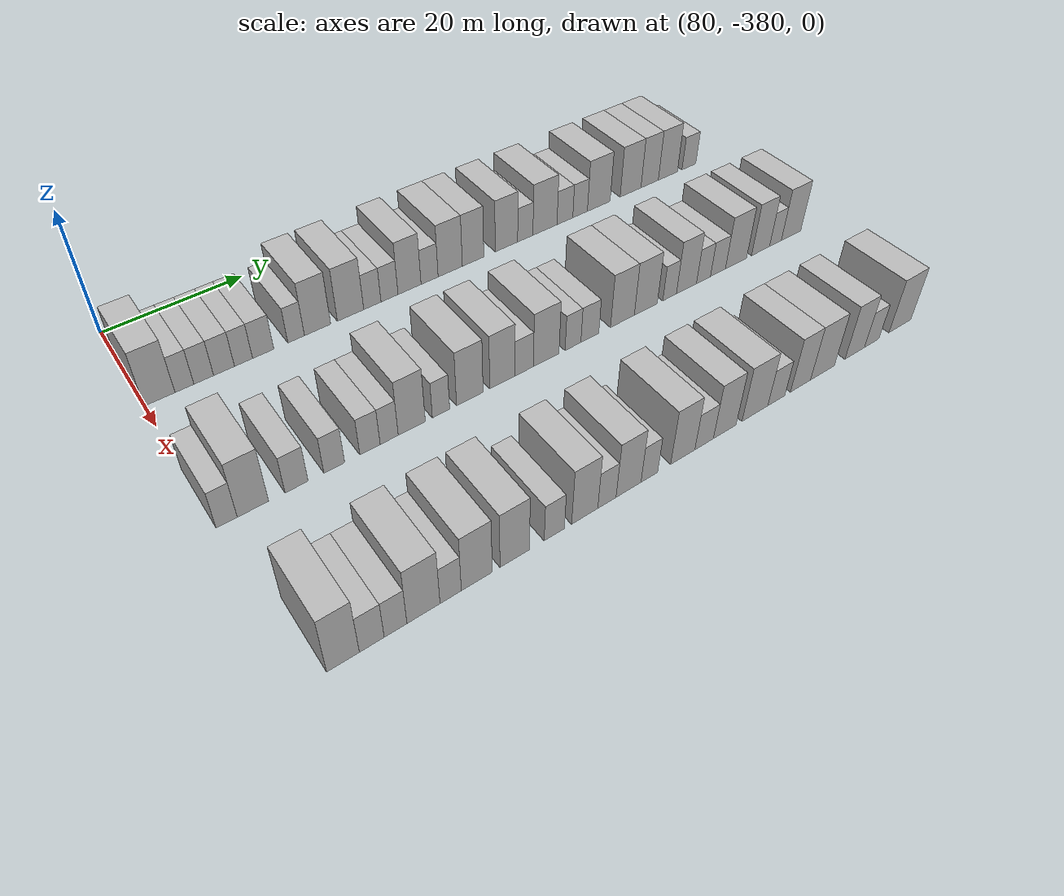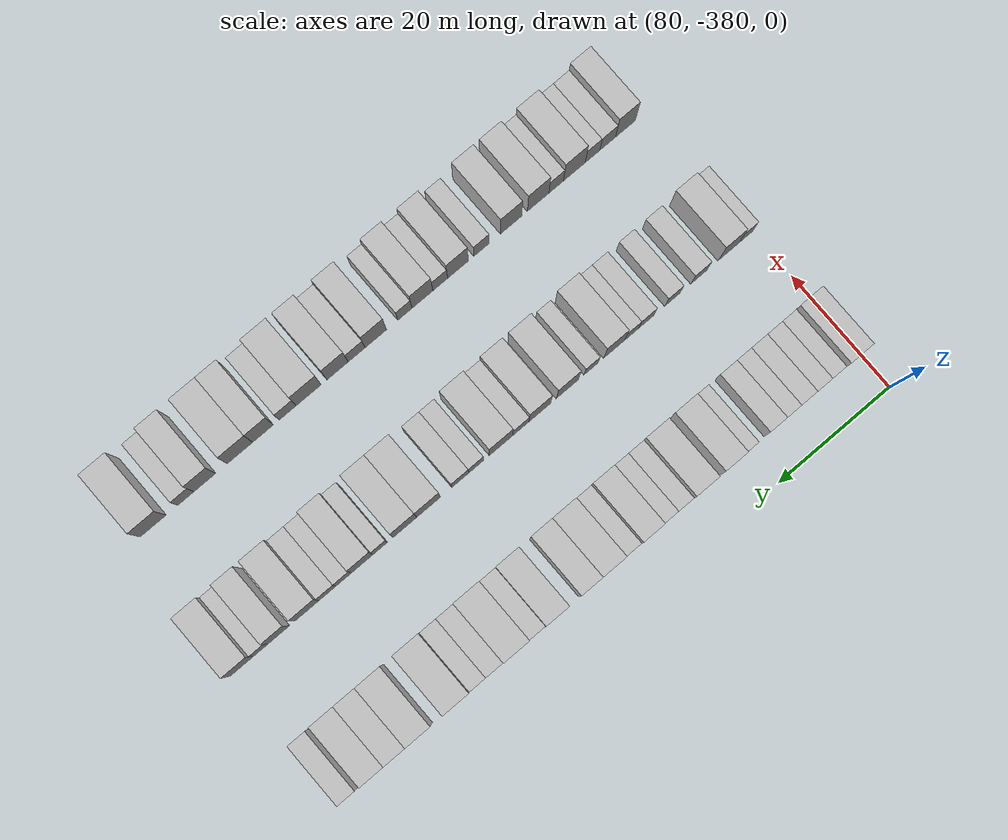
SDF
<sdf version="1.6">
 <world name="default">
  <model name="building_567">
   <static>1</static>
   <pose>91.0000 -378.0158 0 0.000000 0.000000 0.000000</pose>
   <link name="link">
    <pose>0 0 4.50 0 0 0</pose>
    <collision name="collision"><geometry><box><size>10.0000 3.9683 9.0000</size></box></geometry></collision>
    <visual name="visual">
     <cast_shadows>0</cast_shadows>
     <geometry><box><size>10.0000 3.9683 9.0000</size></box></geometry>
     <material>
      <script>
       <uri>model://HANNAS_wall/materials/scripts</uri>
       <uri>model://HANNAS_wall/materials/textures</uri>
       <name>vrc/HANNAS_wall</name>
      </script>
     </material>
    </visual>
   </link>
  </model>
  <model name="building_568">
   <static>1</static>
   <pose>91.0000 -374.8003 0 0.000000 0.000000 0.000000</pose>
   <link name="link">
    <pose>0 0 3.00 0 0 0</pose>
    <collision name="collision"><geometry><box><size>10.0000 2.4629 6.0000</size></box></geometry></collision>
    <visual name="visual">
     <cast_shadows>0</cast_shadows>
     <geometry><box><size>10.0000 2.4629 6.0000</size></box></geometry>
     <material>
      <script>
       <uri>model://HANNAS_wall/materials/scripts</uri>
       <uri>model://HANNAS_wall/materials/textures</uri>
       <name>vrc/HANNAS_wall</name>
      </script>
     </material>
    </visual>
   </link>
  </model>
  <model name="building_569">
   <static>1</static>
   <pose>91.0000 -372.2596 0 0.000000 0.000000 0.000000</pose>
   <link name="link">
    <pose>0 0 3.00 0 0 0</pose>
    <collision name="collision"><geometry><box><size>10.0000 2.6185 6.0000</size></box></geometry></collision>
    <visual name="visual">
     <cast_shadows>0</cast_shadows>
     <geometry><box><size>10.0000 2.6185 6.0000</size></box></geometry>
     <material>
      <script>
       <uri>model://HANNAS_wall/materials/scripts</uri>
       <uri>model://HANNAS_wall/materials/textures</uri>
       <name>vrc/HANNAS_wall</name>
      </script>
     </material>
    </visual>
   </link>
  </model>
  <model name="building_570">
   <static>1</static>
   <pose>91.0000 -369.5395 0 0.000000 0.000000 0.000000</pose>
   <link name="link">
    <pose>0 0 3.00 0 0 0</pose>
    <collision name="collision"><geometry><box><size>10.0000 2.8217 6.0000</size></box></geometry></collision>
    <visual name="visual">
     <cast_shadows>0</cast_shadows>
     <geometry><box><size>10.0000 2.8217 6.0000</size></box></geometry>
     <material>
      <script>
       <uri>model://HANNAS_wall/materials/scripts</uri>
       <uri>model://HANNAS_wall/materials/textures</uri>
       <name>vrc/HANNAS_wall</name>
      </script>
     </material>
    </visual>
   </link>
  </model>
  <model name="building_571">
   <static>1</static>
   <pose>91.0000 -366.8815 0 0.000000 0.000000 0.000000</pose>
   <link name="link">
    <pose>0 0 3.00 0 0 0</pose>
    <collision name="collision"><geometry><box><size>10.0000 2.4943 6.0000</size></box></geometry></collision>
    <visual name="visual">
     <cast_shadows>0</cast_shadows>
     <geometry><box><size>10.0000 2.4943 6.0000</size></box></geometry>
     <material>
      <script>
       <uri>model://HANNAS_wall/materials/scripts</uri>
       <uri>model://HANNAS_wall/materials/textures</uri>
       <name>vrc/HANNAS_wall</name>
      </script>
     </material>
    </visual>
   </link>
  </model>
  <model name="building_572">
   <static>1</static>
   <pose>91.0000 -364.1467 0 0.000000 0.000000 0.000000</pose>
   <link name="link">
    <pose>0 0 3.00 0 0 0</pose>
    <collision name="collision"><geometry><box><size>10.0000 2.9753 6.0000</size></box></geometry></collision>
    <visual name="visual">
     <cast_shadows>0</cast_shadows>
     <geometry><box><size>10.0000 2.9753 6.0000</size></box></geometry>
     <material>
      <script>
       <uri>model://HANNAS_wall/materials/scripts</uri>
       <uri>model://HANNAS_wall/materials/textures</uri>
       <name>vrc/HANNAS_wall</name>
      </script>
     </material>
    </visual>
   </link>
  </model>
  <model name="building_573">
   <static>1</static>
   <pose>91.0000 -359.4587 0 0.000000 0.000000 0.000000</pose>
   <link name="link">
    <pose>0 0 3.00 0 0 0</pose>
    <collision name="collision"><geometry><box><size>10.0000 2.4008 6.0000</size></box></geometry></collision>
    <visual name="visual">
     <cast_shadows>0</cast_shadows>
     <geometry><box><size>10.0000 2.4008 6.0000</size></box></geometry>
     <material>
      <script>
       <uri>model://HANNAS_wall/materials/scripts</uri>
       <uri>model://HANNAS_wall/materials/textures</uri>
       <name>vrc/HANNAS_wall</name>
      </script>
     </material>
    </visual>
   </link>
  </model>
  <model name="building_574">
   <static>1</static>
   <pose>91.0000 -356.3230 0 0.000000 0.000000 0.000000</pose>
   <link name="link">
    <pose>0 0 4.50 0 0 0</pose>
    <collision name="collision"><geometry><box><size>10.0000 3.8706 9.0000</size></box></geometry></collision>
    <visual name="visual">
     <cast_shadows>0</cast_shadows>
     <geometry><box><size>10.0000 3.8706 9.0000</size></box></geometry>
     <material>
      <script>
       <uri>model://HANNAS_wall/materials/scripts</uri>
       <uri>model://HANNAS_wall/materials/textures</uri>
       <name>vrc/HANNAS_wall</name>
      </script>
     </material>
    </visual>
   </link>
  </model>
  <model name="building_575">
   <static>1</static>
   <pose>91.0000 -351.3809 0 0.000000 0.000000 0.000000</pose>
   <link name="link">
    <pose>0 0 4.50 0 0 0</pose>
    <collision name="collision"><geometry><box><size>10.0000 4.0135 9.0000</size></box></geometry></collision>
    <visual name="visual">
     <cast_shadows>0</cast_shadows>
     <geometry><box><size>10.0000 4.0135 9.0000</size></box></geometry>
     <material>
      <script>
       <uri>model://HANNAS_wall/materials/scripts</uri>
       <uri>model://HANNAS_wall/materials/textures</uri>
       <name>vrc/HANNAS_wall</name>
      </script>
     </material>
    </visual>
   </link>
  </model>
  <model name="building_576">
   <static>1</static>
   <pose>91.0000 -348.0329 0 0.000000 0.000000 0.000000</pose>
   <link name="link">
    <pose>0 0 3.00 0 0 0</pose>
    <collision name="collision"><geometry><box><size>10.0000 2.6825 6.0000</size></box></geometry></collision>
    <visual name="visual">
     <cast_shadows>0</cast_shadows>
     <geometry><box><size>10.0000 2.6825 6.0000</size></box></geometry>
     <material>
      <script>
       <uri>model://HANNAS_wall/materials/scripts</uri>
       <uri>model://HANNAS_wall/materials/textures</uri>
       <name>vrc/HANNAS_wall</name>
      </script>
     </material>
    </visual>
   </link>
  </model>
  <model name="building_577">
   <static>1</static>
   <pose>91.0000 -345.3489 0 0.000000 0.000000 0.000000</pose>
   <link name="link">
    <pose>0 0 3.00 0 0 0</pose>
    <collision name="collision"><geometry><box><size>10.0000 2.6855 6.0000</size></box></geometry></collision>
    <visual name="visual">
     <cast_shadows>0</cast_shadows>
     <geometry><box><size>10.0000 2.6855 6.0000</size></box></geometry>
     <material>
      <script>
       <uri>model://HANNAS_wall/materials/scripts</uri>
       <uri>model://HANNAS_wall/materials/textures</uri>
       <name>vrc/HANNAS_wall</name>
      </script>
     </material>
    </visual>
   </link>
  </model>
  <model name="building_578">
   <static>1</static>
   <pose>91.0000 -342.1484 0 0.000000 0.000000 0.000000</pose>
   <link name="link">
    <pose>0 0 4.50 0 0 0</pose>
    <collision name="collision"><geometry><box><size>10.0000 3.7154 9.0000</size></box></geometry></collision>
    <visual name="visual">
     <cast_shadows>0</cast_shadows>
     <geometry><box><size>10.0000 3.7154 9.0000</size></box></geometry>
     <material>
      <script>
       <uri>model://HANNAS_wall/materials/scripts</uri>
       <uri>model://HANNAS_wall/materials/textures</uri>
       <name>vrc/HANNAS_wall</name>
      </script>
     </material>
    </visual>
   </link>
  </model>
  <model name="building_579">
   <static>1</static>
   <pose>91.0000 -338.8893 0 0.000000 0.000000 0.000000</pose>
   <link name="link">
    <pose>0 0 3.00 0 0 0</pose>
    <collision name="collision"><geometry><box><size>10.0000 2.8028 6.0000</size></box></geometry></collision>
    <visual name="visual">
     <cast_shadows>0</cast_shadows>
     <geometry><box><size>10.0000 2.8028 6.0000</size></box></geometry>
     <material>
      <script>
       <uri>model://HANNAS_wall/materials/scripts</uri>
       <uri>model://HANNAS_wall/materials/textures</uri>
       <name>vrc/HANNAS_wall</name>
      </script>
     </material>
    </visual>
   </link>
  </model>
  <model name="building_580">
   <static>1</static>
   <pose>91.0000 -335.4547 0 0.000000 0.000000 0.000000</pose>
   <link name="link">
    <pose>0 0 4.50 0 0 0</pose>
    <collision name="collision"><geometry><box><size>10.0000 4.0664 9.0000</size></box></geometry></collision>
    <visual name="visual">
     <cast_shadows>0</cast_shadows>
     <geometry><box><size>10.0000 4.0664 9.0000</size></box></geometry>
     <material>
      <script>
       <uri>model://HANNAS_wall/materials/scripts</uri>
       <uri>model://HANNAS_wall/materials/textures</uri>
       <name>vrc/HANNAS_wall</name>
      </script>
     </material>
    </visual>
   </link>
  </model>
  <model name="building_581">
   <static>1</static>
   <pose>91.0000 -331.5800 0 0.000000 0.000000 0.000000</pose>
   <link name="link">
    <pose>0 0 4.50 0 0 0</pose>
    <collision name="collision"><geometry><box><size>10.0000 3.6829 9.0000</size></box></geometry></collision>
    <visual name="visual">
     <cast_shadows>0</cast_shadows>
     <geometry><box><size>10.0000 3.6829 9.0000</size></box></geometry>
     <material>
      <script>
       <uri>model://HANNAS_wall/materials/scripts</uri>
       <uri>model://HANNAS_wall/materials/textures</uri>
       <name>vrc/HANNAS_wall</name>
      </script>
     </material>
    </visual>
   </link>
  </model>
  <model name="building_582">
   <static>1</static>
   <pose>91.0000 -325.7491 0 0.000000 0.000000 0.000000</pose>
   <link name="link">
    <pose>0 0 4.50 0 0 0</pose>
    <collision name="collision"><geometry><box><size>10.0000 3.9789 9.0000</size></box></geometry></collision>
    <visual name="visual">
     <cast_shadows>0</cast_shadows>
     <geometry><box><size>10.0000 3.9789 9.0000</size></box></geometry>
     <material>
      <script>
       <uri>model://HANNAS_wall/materials/scripts</uri>
       <uri>model://HANNAS_wall/materials/textures</uri>
       <name>vrc/HANNAS_wall</name>
      </script>
     </material>
    </visual>
   </link>
  </model>
  <model name="building_583">
   <static>1</static>
   <pose>91.0000 -322.3798 0 0.000000 0.000000 0.000000</pose>
   <link name="link">
    <pose>0 0 3.00 0 0 0</pose>
    <collision name="collision"><geometry><box><size>10.0000 2.7599 6.0000</size></box></geometry></collision>
    <visual name="visual">
     <cast_shadows>0</cast_shadows>
     <geometry><box><size>10.0000 2.7599 6.0000</size></box></geometry>
     <material>
      <script>
       <uri>model://HANNAS_wall/materials/scripts</uri>
       <uri>model://HANNAS_wall/materials/textures</uri>
       <name>vrc/HANNAS_wall</name>
      </script>
     </material>
    </visual>
   </link>
  </model>
  <model name="building_584">
   <static>1</static>
   <pose>91.0000 -318.7739 0 0.000000 0.000000 0.000000</pose>
   <link name="link">
    <pose>0 0 4.50 0 0 0</pose>
    <collision name="collision"><geometry><box><size>10.0000 4.4519 9.0000</size></box></geometry></collision>
    <visual name="visual">
     <cast_shadows>0</cast_shadows>
     <geometry><box><size>10.0000 4.4519 9.0000</size></box></geometry>
     <material>
      <script>
       <uri>model://HANNAS_wall/materials/scripts</uri>
       <uri>model://HANNAS_wall/materials/textures</uri>
       <name>vrc/HANNAS_wall</name>
      </script>
     </material>
    </visual>
   </link>
  </model>
  <model name="building_585">
   <static>1</static>
   <pose>91.0000 -315.0492 0 0.000000 0.000000 0.000000</pose>
   <link name="link">
    <pose>0 0 3.00 0 0 0</pose>
    <collision name="collision"><geometry><box><size>10.0000 2.9974 6.0000</size></box></geometry></collision>
    <visual name="visual">
     <cast_shadows>0</cast_shadows>
     <geometry><box><size>10.0000 2.9974 6.0000</size></box></geometry>
     <material>
      <script>
       <uri>model://HANNAS_wall/materials/scripts</uri>
       <uri>model://HANNAS_wall/materials/textures</uri>
       <name>vrc/HANNAS_wall</name>
      </script>
     </material>
    </visual>
   </link>
  </model>
  <model name="building_586">
   <static>1</static>
   <pose>91.0000 -312.1486 0 0.000000 0.000000 0.000000</pose>
   <link name="link">
    <pose>0 0 3.00 0 0 0</pose>
    <collision name="collision"><geometry><box><size>10.0000 2.8039 6.0000</size></box></geometry></collision>
    <visual name="visual">
     <cast_shadows>0</cast_shadows>
     <geometry><box><size>10.0000 2.8039 6.0000</size></box></geometry>
     <material>
      <script>
       <uri>model://HANNAS_wall/materials/scripts</uri>
       <uri>model://HANNAS_wall/materials/textures</uri>
       <name>vrc/HANNAS_wall</name>
      </script>
     </material>
    </visual>
   </link>
  </model>
  <model name="building_587">
   <static>1</static>
   <pose>91.0000 -308.5208 0 0.000000 0.000000 0.000000</pose>
   <link name="link">
    <pose>0 0 4.50 0 0 0</pose>
    <collision name="collision"><geometry><box><size>10.0000 4.4518 9.0000</size></box></geometry></collision>
    <visual name="visual">
     <cast_shadows>0</cast_shadows>
     <geometry><box><size>10.0000 4.4518 9.0000</size></box></geometry>
     <material>
      <script>
       <uri>model://HANNAS_wall/materials/scripts</uri>
       <uri>model://HANNAS_wall/materials/textures</uri>
       <name>vrc/HANNAS_wall</name>
      </script>
     </material>
    </visual>
   </link>
  </model>
  <model name="building_588">
   <static>1</static>
   <pose>91.0000 -302.1798 0 0.000000 0.000000 0.000000</pose>
   <link name="link">
    <pose>0 0 4.50 0 0 0</pose>
    <collision name="collision"><geometry><box><size>10.0000 4.2302 9.0000</size></box></geometry></collision>
    <visual name="visual">
     <cast_shadows>0</cast_shadows>
     <geometry><box><size>10.0000 4.2302 9.0000</size></box></geometry>
     <material>
      <script>
       <uri>model://HANNAS_wall/materials/scripts</uri>
       <uri>model://HANNAS_wall/materials/textures</uri>
       <name>vrc/HANNAS_wall</name>
      </script>
     </material>
    </visual>
   </link>
  </model>
  <model name="building_589">
   <static>1</static>
   <pose>91.0000 -298.2613 0 0.000000 0.000000 0.000000</pose>
   <link name="link">
    <pose>0 0 4.50 0 0 0</pose>
    <collision name="collision"><geometry><box><size>10.0000 3.6068 9.0000</size></box></geometry></collision>
    <visual name="visual">
     <cast_shadows>0</cast_shadows>
     <geometry><box><size>10.0000 3.6068 9.0000</size></box></geometry>
     <material>
      <script>
       <uri>model://HANNAS_wall/materials/scripts</uri>
       <uri>model://HANNAS_wall/materials/textures</uri>
       <name>vrc/HANNAS_wall</name>
      </script>
     </material>
    </visual>
   </link>
  </model>
  <model name="building_590">
   <static>1</static>
   <pose>91.0000 -294.4457 0 0.000000 0.000000 0.000000</pose>
   <link name="link">
    <pose>0 0 4.50 0 0 0</pose>
    <collision name="collision"><geometry><box><size>10.0000 4.0244 9.0000</size></box></geometry></collision>
    <visual name="visual">
     <cast_shadows>0</cast_shadows>
     <geometry><box><size>10.0000 4.0244 9.0000</size></box></geometry>
     <material>
      <script>
       <uri>model://HANNAS_wall/materials/scripts</uri>
       <uri>model://HANNAS_wall/materials/textures</uri>
       <name>vrc/HANNAS_wall</name>
      </script>
     </material>
    </visual>
   </link>
  </model>
  <model name="building_591">
   <static>1</static>
   <pose>91.0000 -289.9420 0 0.000000 0.000000 0.000000</pose>
   <link name="link">
    <pose>0 0 3.00 0 0 0</pose>
    <collision name="collision"><geometry><box><size>10.0000 2.9829 6.0000</size></box></geometry></collision>
    <visual name="visual">
     <cast_shadows>0</cast_shadows>
     <geometry><box><size>10.0000 2.9829 6.0000</size></box></geometry>
     <material>
      <script>
       <uri>model://HANNAS_wall/materials/scripts</uri>
       <uri>model://HANNAS_wall/materials/textures</uri>
       <name>vrc/HANNAS_wall</name>
      </script>
     </material>
    </visual>
   </link>
  </model>
  <model name="building_757">
   <static>1</static>
   <pose>113.0000 -378.7562 0 0.000000 0.000000 0.000000</pose>
   <link name="link">
    <pose>0 0 3.00 0 0 0</pose>
    <collision name="collision"><geometry><box><size>10.0000 2.4876 6.0000</size></box></geometry></collision>
    <visual name="visual">
     <cast_shadows>0</cast_shadows>
     <geometry><box><size>10.0000 2.4876 6.0000</size></box></geometry>
     <material>
      <script>
       <uri>model://HANNAS_wall/materials/scripts</uri>
       <uri>model://HANNAS_wall/materials/textures</uri>
       <name>vrc/HANNAS_wall</name>
      </script>
     </material>
    </visual>
   </link>
  </model>
  <model name="building_758">
   <static>1</static>
   <pose>113.0000 -375.6260 0 0.000000 0.000000 0.000000</pose>
   <link name="link">
    <pose>0 0 4.50 0 0 0</pose>
    <collision name="collision"><geometry><box><size>10.0000 3.7728 9.0000</size></box></geometry></collision>
    <visual name="visual">
     <cast_shadows>0</cast_shadows>
     <geometry><box><size>10.0000 3.7728 9.0000</size></box></geometry>
     <material>
      <script>
       <uri>model://HANNAS_wall/materials/scripts</uri>
       <uri>model://HANNAS_wall/materials/textures</uri>
       <name>vrc/HANNAS_wall</name>
      </script>
     </material>
    </visual>
   </link>
  </model>
  <model name="building_759">
   <static>1</static>
   <pose>113.0000 -370.2925 0 0.000000 0.000000 0.000000</pose>
   <link name="link">
    <pose>0 0 3.00 0 0 0</pose>
    <collision name="collision"><geometry><box><size>10.0000 2.8942 6.0000</size></box></geometry></collision>
    <visual name="visual">
     <cast_shadows>0</cast_shadows>
     <geometry><box><size>10.0000 2.8942 6.0000</size></box></geometry>
     <material>
      <script>
       <uri>model://HANNAS_wall/materials/scripts</uri>
       <uri>model://HANNAS_wall/materials/textures</uri>
       <name>vrc/HANNAS_wall</name>
      </script>
     </material>
    </visual>
   </link>
  </model>
  <model name="building_760">
   <static>1</static>
   <pose>113.0000 -365.4995 0 0.000000 0.000000 0.000000</pose>
   <link name="link">
    <pose>0 0 3.00 0 0 0</pose>
    <collision name="collision"><geometry><box><size>10.0000 2.6917 6.0000</size></box></geometry></collision>
    <visual name="visual">
     <cast_shadows>0</cast_shadows>
     <geometry><box><size>10.0000 2.6917 6.0000</size></box></geometry>
     <material>
      <script>
       <uri>model://HANNAS_wall/materials/scripts</uri>
       <uri>model://HANNAS_wall/materials/textures</uri>
       <name>vrc/HANNAS_wall</name>
      </script>
     </material>
    </visual>
   </link>
  </model>
  <model name="building_761">
   <static>1</static>
   <pose>113.0000 -360.7933 0 0.000000 0.000000 0.000000</pose>
   <link name="link">
    <pose>0 0 3.00 0 0 0</pose>
    <collision name="collision"><geometry><box><size>10.0000 2.7208 6.0000</size></box></geometry></collision>
    <visual name="visual">
     <cast_shadows>0</cast_shadows>
     <geometry><box><size>10.0000 2.7208 6.0000</size></box></geometry>
     <material>
      <script>
       <uri>model://HANNAS_wall/materials/scripts</uri>
       <uri>model://HANNAS_wall/materials/textures</uri>
       <name>vrc/HANNAS_wall</name>
      </script>
     </material>
    </visual>
   </link>
  </model>
  <model name="building_762">
   <static>1</static>
   <pose>113.0000 -358.1985 0 0.000000 0.000000 0.000000</pose>
   <link name="link">
    <pose>0 0 3.00 0 0 0</pose>
    <collision name="collision"><geometry><box><size>10.0000 2.4688 6.0000</size></box></geometry></collision>
    <visual name="visual">
     <cast_shadows>0</cast_shadows>
     <geometry><box><size>10.0000 2.4688 6.0000</size></box></geometry>
     <material>
      <script>
       <uri>model://HANNAS_wall/materials/scripts</uri>
       <uri>model://HANNAS_wall/materials/textures</uri>
       <name>vrc/HANNAS_wall</name>
      </script>
     </material>
    </visual>
   </link>
  </model>
  <model name="building_763">
   <static>1</static>
   <pose>113.0000 -355.0767 0 0.000000 0.000000 0.000000</pose>
   <link name="link">
    <pose>0 0 4.50 0 0 0</pose>
    <collision name="collision"><geometry><box><size>10.0000 3.7748 9.0000</size></box></geometry></collision>
    <visual name="visual">
     <cast_shadows>0</cast_shadows>
     <geometry><box><size>10.0000 3.7748 9.0000</size></box></geometry>
     <material>
      <script>
       <uri>model://HANNAS_wall/materials/scripts</uri>
       <uri>model://HANNAS_wall/materials/textures</uri>
       <name>vrc/HANNAS_wall</name>
      </script>
     </material>
    </visual>
   </link>
  </model>
  <model name="building_764">
   <static>1</static>
   <pose>113.0000 -350.9480 0 0.000000 0.000000 0.000000</pose>
   <link name="link">
    <pose>0 0 3.00 0 0 0</pose>
    <collision name="collision"><geometry><box><size>10.0000 2.4826 6.0000</size></box></geometry></collision>
    <visual name="visual">
     <cast_shadows>0</cast_shadows>
     <geometry><box><size>10.0000 2.4826 6.0000</size></box></geometry>
     <material>
      <script>
       <uri>model://HANNAS_wall/materials/scripts</uri>
       <uri>model://HANNAS_wall/materials/textures</uri>
       <name>vrc/HANNAS_wall</name>
      </script>
     </material>
    </visual>
   </link>
  </model>
  <model name="building_765">
   <static>1</static>
   <pose>113.0000 -346.7417 0 0.000000 0.000000 0.000000</pose>
   <link name="link">
    <pose>0 0 4.50 0 0 0</pose>
    <collision name="collision"><geometry><box><size>10.0000 3.9300 9.0000</size></box></geometry></collision>
    <visual name="visual">
     <cast_shadows>0</cast_shadows>
     <geometry><box><size>10.0000 3.9300 9.0000</size></box></geometry>
     <material>
      <script>
       <uri>model://HANNAS_wall/materials/scripts</uri>
       <uri>model://HANNAS_wall/materials/textures</uri>
       <name>vrc/HANNAS_wall</name>
      </script>
     </material>
    </visual>
   </link>
  </model>
  <model name="building_766">
   <static>1</static>
   <pose>113.0000 -341.8485 0 0.000000 0.000000 0.000000</pose>
   <link name="link">
    <pose>0 0 4.50 0 0 0</pose>
    <collision name="collision"><geometry><box><size>10.0000 3.8563 9.0000</size></box></geometry></collision>
    <visual name="visual">
     <cast_shadows>0</cast_shadows>
     <geometry><box><size>10.0000 3.8563 9.0000</size></box></geometry>
     <material>
      <script>
       <uri>model://HANNAS_wall/materials/scripts</uri>
       <uri>model://HANNAS_wall/materials/textures</uri>
       <name>vrc/HANNAS_wall</name>
      </script>
     </material>
    </visual>
   </link>
  </model>
  <model name="building_767">
   <static>1</static>
   <pose>113.0000 -338.4927 0 0.000000 0.000000 0.000000</pose>
   <link name="link">
    <pose>0 0 3.00 0 0 0</pose>
    <collision name="collision"><geometry><box><size>10.0000 2.8553 6.0000</size></box></geometry></collision>
    <visual name="visual">
     <cast_shadows>0</cast_shadows>
     <geometry><box><size>10.0000 2.8553 6.0000</size></box></geometry>
     <material>
      <script>
       <uri>model://HANNAS_wall/materials/scripts</uri>
       <uri>model://HANNAS_wall/materials/textures</uri>
       <name>vrc/HANNAS_wall</name>
      </script>
     </material>
    </visual>
   </link>
  </model>
  <model name="building_768">
   <static>1</static>
   <pose>113.0000 -335.0093 0 0.000000 0.000000 0.000000</pose>
   <link name="link">
    <pose>0 0 4.50 0 0 0</pose>
    <collision name="collision"><geometry><box><size>10.0000 4.1115 9.0000</size></box></geometry></collision>
    <visual name="visual">
     <cast_shadows>0</cast_shadows>
     <geometry><box><size>10.0000 4.1115 9.0000</size></box></geometry>
     <material>
      <script>
       <uri>model://HANNAS_wall/materials/scripts</uri>
       <uri>model://HANNAS_wall/materials/textures</uri>
       <name>vrc/HANNAS_wall</name>
      </script>
     </material>
    </visual>
   </link>
  </model>
  <model name="building_769">
   <static>1</static>
   <pose>113.0000 -330.6528 0 0.000000 0.000000 0.000000</pose>
   <link name="link">
    <pose>0 0 3.00 0 0 0</pose>
    <collision name="collision"><geometry><box><size>10.0000 2.6013 6.0000</size></box></geometry></collision>
    <visual name="visual">
     <cast_shadows>0</cast_shadows>
     <geometry><box><size>10.0000 2.6013 6.0000</size></box></geometry>
     <material>
      <script>
       <uri>model://HANNAS_wall/materials/scripts</uri>
       <uri>model://HANNAS_wall/materials/textures</uri>
       <name>vrc/HANNAS_wall</name>
      </script>
     </material>
    </visual>
   </link>
  </model>
  <model name="building_770">
   <static>1</static>
   <pose>113.0000 -327.8547 0 0.000000 0.000000 0.000000</pose>
   <link name="link">
    <pose>0 0 3.00 0 0 0</pose>
    <collision name="collision"><geometry><box><size>10.0000 2.9950 6.0000</size></box></geometry></collision>
    <visual name="visual">
     <cast_shadows>0</cast_shadows>
     <geometry><box><size>10.0000 2.9950 6.0000</size></box></geometry>
     <material>
      <script>
       <uri>model://HANNAS_wall/materials/scripts</uri>
       <uri>model://HANNAS_wall/materials/textures</uri>
       <name>vrc/HANNAS_wall</name>
      </script>
     </material>
    </visual>
   </link>
  </model>
  <model name="building_771">
   <static>1</static>
   <pose>113.0000 -322.2824 0 0.000000 0.000000 0.000000</pose>
   <link name="link">
    <pose>0 0 4.50 0 0 0</pose>
    <collision name="collision"><geometry><box><size>10.0000 4.1495 9.0000</size></box></geometry></collision>
    <visual name="visual">
     <cast_shadows>0</cast_shadows>
     <geometry><box><size>10.0000 4.1495 9.0000</size></box></geometry>
     <material>
      <script>
       <uri>model://HANNAS_wall/materials/scripts</uri>
       <uri>model://HANNAS_wall/materials/textures</uri>
       <name>vrc/HANNAS_wall</name>
      </script>
     </material>
    </visual>
   </link>
  </model>
  <model name="building_772">
   <static>1</static>
   <pose>113.0000 -318.1601 0 0.000000 0.000000 0.000000</pose>
   <link name="link">
    <pose>0 0 4.50 0 0 0</pose>
    <collision name="collision"><geometry><box><size>10.0000 4.0951 9.0000</size></box></geometry></collision>
    <visual name="visual">
     <cast_shadows>0</cast_shadows>
     <geometry><box><size>10.0000 4.0951 9.0000</size></box></geometry>
     <material>
      <script>
       <uri>model://HANNAS_wall/materials/scripts</uri>
       <uri>model://HANNAS_wall/materials/textures</uri>
       <name>vrc/HANNAS_wall</name>
      </script>
     </material>
    </visual>
   </link>
  </model>
  <model name="building_773">
   <static>1</static>
   <pose>113.0000 -313.8678 0 0.000000 0.000000 0.000000</pose>
   <link name="link">
    <pose>0 0 3.00 0 0 0</pose>
    <collision name="collision"><geometry><box><size>10.0000 2.4894 6.0000</size></box></geometry></collision>
    <visual name="visual">
     <cast_shadows>0</cast_shadows>
     <geometry><box><size>10.0000 2.4894 6.0000</size></box></geometry>
     <material>
      <script>
       <uri>model://HANNAS_wall/materials/scripts</uri>
       <uri>model://HANNAS_wall/materials/textures</uri>
       <name>vrc/HANNAS_wall</name>
      </script>
     </material>
    </visual>
   </link>
  </model>
  <model name="building_774">
   <static>1</static>
   <pose>113.0000 -310.7452 0 0.000000 0.000000 0.000000</pose>
   <link name="link">
    <pose>0 0 4.50 0 0 0</pose>
    <collision name="collision"><geometry><box><size>10.0000 3.7559 9.0000</size></box></geometry></collision>
    <visual name="visual">
     <cast_shadows>0</cast_shadows>
     <geometry><box><size>10.0000 3.7559 9.0000</size></box></geometry>
     <material>
      <script>
       <uri>model://HANNAS_wall/materials/scripts</uri>
       <uri>model://HANNAS_wall/materials/textures</uri>
       <name>vrc/HANNAS_wall</name>
      </script>
     </material>
    </visual>
   </link>
  </model>
  <model name="building_775">
   <static>1</static>
   <pose>113.0000 -307.5358 0 0.000000 0.000000 0.000000</pose>
   <link name="link">
    <pose>0 0 3.00 0 0 0</pose>
    <collision name="collision"><geometry><box><size>10.0000 2.6630 6.0000</size></box></geometry></collision>
    <visual name="visual">
     <cast_shadows>0</cast_shadows>
     <geometry><box><size>10.0000 2.6630 6.0000</size></box></geometry>
     <material>
      <script>
       <uri>model://HANNAS_wall/materials/scripts</uri>
       <uri>model://HANNAS_wall/materials/textures</uri>
       <name>vrc/HANNAS_wall</name>
      </script>
     </material>
    </visual>
   </link>
  </model>
  <model name="building_776">
   <static>1</static>
   <pose>113.0000 -304.7597 0 0.000000 0.000000 0.000000</pose>
   <link name="link">
    <pose>0 0 3.00 0 0 0</pose>
    <collision name="collision"><geometry><box><size>10.0000 2.8892 6.0000</size></box></geometry></collision>
    <visual name="visual">
     <cast_shadows>0</cast_shadows>
     <geometry><box><size>10.0000 2.8892 6.0000</size></box></geometry>
     <material>
      <script>
       <uri>model://HANNAS_wall/materials/scripts</uri>
       <uri>model://HANNAS_wall/materials/textures</uri>
       <name>vrc/HANNAS_wall</name>
      </script>
     </material>
    </visual>
   </link>
  </model>
  <model name="building_777">
   <static>1</static>
   <pose>113.0000 -301.2146 0 0.000000 0.000000 0.000000</pose>
   <link name="link">
    <pose>0 0 4.50 0 0 0</pose>
    <collision name="collision"><geometry><box><size>10.0000 4.2011 9.0000</size></box></geometry></collision>
    <visual name="visual">
     <cast_shadows>0</cast_shadows>
     <geometry><box><size>10.0000 4.2011 9.0000</size></box></geometry>
     <material>
      <script>
       <uri>model://HANNAS_wall/materials/scripts</uri>
       <uri>model://HANNAS_wall/materials/textures</uri>
       <name>vrc/HANNAS_wall</name>
      </script>
     </material>
    </visual>
   </link>
  </model>
  <model name="building_778">
   <static>1</static>
   <pose>113.0000 -296.2862 0 0.000000 0.000000 0.000000</pose>
   <link name="link">
    <pose>0 0 4.50 0 0 0</pose>
    <collision name="collision"><geometry><box><size>10.0000 3.6557 9.0000</size></box></geometry></collision>
    <visual name="visual">
     <cast_shadows>0</cast_shadows>
     <geometry><box><size>10.0000 3.6557 9.0000</size></box></geometry>
     <material>
      <script>
       <uri>model://HANNAS_wall/materials/scripts</uri>
       <uri>model://HANNAS_wall/materials/textures</uri>
       <name>vrc/HANNAS_wall</name>
      </script>
     </material>
    </visual>
   </link>
  </model>
  <model name="building_779">
   <static>1</static>
   <pose>113.0000 -293.2380 0 0.000000 0.000000 0.000000</pose>
   <link name="link">
    <pose>0 0 3.00 0 0 0</pose>
    <collision name="collision"><geometry><box><size>10.0000 2.4408 6.0000</size></box></geometry></collision>
    <visual name="visual">
     <cast_shadows>0</cast_shadows>
     <geometry><box><size>10.0000 2.4408 6.0000</size></box></geometry>
     <material>
      <script>
       <uri>model://HANNAS_wall/materials/scripts</uri>
       <uri>model://HANNAS_wall/materials/textures</uri>
       <name>vrc/HANNAS_wall</name>
      </script>
     </material>
    </visual>
   </link>
  </model>
  <model name="building_780">
   <static>1</static>
   <pose>113.0000 -289.9582 0 0.000000 0.000000 0.000000</pose>
   <link name="link">
    <pose>0 0 4.50 0 0 0</pose>
    <collision name="collision"><geometry><box><size>10.0000 4.1188 9.0000</size></box></geometry></collision>
    <visual name="visual">
     <cast_shadows>0</cast_shadows>
     <geometry><box><size>10.0000 4.1188 9.0000</size></box></geometry>
     <material>
      <script>
       <uri>model://HANNAS_wall/materials/scripts</uri>
       <uri>model://HANNAS_wall/materials/textures</uri>
       <name>vrc/HANNAS_wall</name>
      </script>
     </material>
    </visual>
   </link>
  </model>
  <model name="building_945">
   <static>1</static>
   <pose>135.0000 -376.1919 0 0.000000 0.000000 0.000000</pose>
   <link name="link">
    <pose>0 0 4.50 0 0 0</pose>
    <collision name="collision"><geometry><box><size>10.0000 3.6162 9.0000</size></box></geometry></collision>
    <visual name="visual">
     <cast_shadows>0</cast_shadows>
     <geometry><box><size>10.0000 3.6162 9.0000</size></box></geometry>
     <material>
      <script>
       <uri>model://HANNAS_wall/materials/scripts</uri>
       <uri>model://HANNAS_wall/materials/textures</uri>
       <name>vrc/HANNAS_wall</name>
      </script>
     </material>
    </visual>
   </link>
  </model>
  <model name="building_946">
   <static>1</static>
   <pose>135.0000 -372.9798 0 0.000000 0.000000 0.000000</pose>
   <link name="link">
    <pose>0 0 3.00 0 0 0</pose>
    <collision name="collision"><geometry><box><size>10.0000 2.8080 6.0000</size></box></geometry></collision>
    <visual name="visual">
     <cast_shadows>0</cast_shadows>
     <geometry><box><size>10.0000 2.8080 6.0000</size></box></geometry>
     <material>
      <script>
       <uri>model://HANNAS_wall/materials/scripts</uri>
       <uri>model://HANNAS_wall/materials/textures</uri>
       <name>vrc/HANNAS_wall</name>
      </script>
     </material>
    </visual>
   </link>
  </model>
  <model name="building_947">
   <static>1</static>
   <pose>135.0000 -370.2600 0 0.000000 0.000000 0.000000</pose>
   <link name="link">
    <pose>0 0 3.00 0 0 0</pose>
    <collision name="collision"><geometry><box><size>10.0000 2.6317 6.0000</size></box></geometry></collision>
    <visual name="visual">
     <cast_shadows>0</cast_shadows>
     <geometry><box><size>10.0000 2.6317 6.0000</size></box></geometry>
     <material>
      <script>
       <uri>model://HANNAS_wall/materials/scripts</uri>
       <uri>model://HANNAS_wall/materials/textures</uri>
       <name>vrc/HANNAS_wall</name>
      </script>
     </material>
    </visual>
   </link>
  </model>
  <model name="building_948">
   <static>1</static>
   <pose>135.0000 -366.9786 0 0.000000 0.000000 0.000000</pose>
   <link name="link">
    <pose>0 0 4.50 0 0 0</pose>
    <collision name="collision"><geometry><box><size>10.0000 3.9310 9.0000</size></box></geometry></collision>
    <visual name="visual">
     <cast_shadows>0</cast_shadows>
     <geometry><box><size>10.0000 3.9310 9.0000</size></box></geometry>
     <material>
      <script>
       <uri>model://HANNAS_wall/materials/scripts</uri>
       <uri>model://HANNAS_wall/materials/textures</uri>
       <name>vrc/HANNAS_wall</name>
      </script>
     </material>
    </visual>
   </link>
  </model>
  <model name="building_949">
   <static>1</static>
   <pose>135.0000 -363.7133 0 0.000000 0.000000 0.000000</pose>
   <link name="link">
    <pose>0 0 3.00 0 0 0</pose>
    <collision name="collision"><geometry><box><size>10.0000 2.5995 6.0000</size></box></geometry></collision>
    <visual name="visual">
     <cast_shadows>0</cast_shadows>
     <geometry><box><size>10.0000 2.5995 6.0000</size></box></geometry>
     <material>
      <script>
       <uri>model://HANNAS_wall/materials/scripts</uri>
       <uri>model://HANNAS_wall/materials/textures</uri>
       <name>vrc/HANNAS_wall</name>
      </script>
     </material>
    </visual>
   </link>
  </model>
  <model name="building_950">
   <static>1</static>
   <pose>135.0000 -360.4792 0 0.000000 0.000000 0.000000</pose>
   <link name="link">
    <pose>0 0 4.50 0 0 0</pose>
    <collision name="collision"><geometry><box><size>10.0000 3.8687 9.0000</size></box></geometry></collision>
    <visual name="visual">
     <cast_shadows>0</cast_shadows>
     <geometry><box><size>10.0000 3.8687 9.0000</size></box></geometry>
     <material>
      <script>
       <uri>model://HANNAS_wall/materials/scripts</uri>
       <uri>model://HANNAS_wall/materials/textures</uri>
       <name>vrc/HANNAS_wall</name>
      </script>
     </material>
    </visual>
   </link>
  </model>
  <model name="building_951">
   <static>1</static>
   <pose>135.0000 -355.6395 0 0.000000 0.000000 0.000000</pose>
   <link name="link">
    <pose>0 0 4.50 0 0 0</pose>
    <collision name="collision"><geometry><box><size>10.0000 3.8107 9.0000</size></box></geometry></collision>
    <visual name="visual">
     <cast_shadows>0</cast_shadows>
     <geometry><box><size>10.0000 3.8107 9.0000</size></box></geometry>
     <material>
      <script>
       <uri>model://HANNAS_wall/materials/scripts</uri>
       <uri>model://HANNAS_wall/materials/textures</uri>
       <name>vrc/HANNAS_wall</name>
      </script>
     </material>
    </visual>
   </link>
  </model>
  <model name="building_952">
   <static>1</static>
   <pose>135.0000 -350.3630 0 0.000000 0.000000 0.000000</pose>
   <link name="link">
    <pose>0 0 3.00 0 0 0</pose>
    <collision name="collision"><geometry><box><size>10.0000 2.7424 6.0000</size></box></geometry></collision>
    <visual name="visual">
     <cast_shadows>0</cast_shadows>
     <geometry><box><size>10.0000 2.7424 6.0000</size></box></geometry>
     <material>
      <script>
       <uri>model://HANNAS_wall/materials/scripts</uri>
       <uri>model://HANNAS_wall/materials/textures</uri>
       <name>vrc/HANNAS_wall</name>
      </script>
     </material>
    </visual>
   </link>
  </model>
  <model name="building_953">
   <static>1</static>
   <pose>135.0000 -346.1534 0 0.000000 0.000000 0.000000</pose>
   <link name="link">
    <pose>0 0 4.50 0 0 0</pose>
    <collision name="collision"><geometry><box><size>10.0000 3.6768 9.0000</size></box></geometry></collision>
    <visual name="visual">
     <cast_shadows>0</cast_shadows>
     <geometry><box><size>10.0000 3.6768 9.0000</size></box></geometry>
     <material>
      <script>
       <uri>model://HANNAS_wall/materials/scripts</uri>
       <uri>model://HANNAS_wall/materials/textures</uri>
       <name>vrc/HANNAS_wall</name>
      </script>
     </material>
    </visual>
   </link>
  </model>
  <model name="building_954">
   <static>1</static>
   <pose>135.0000 -342.9988 0 0.000000 0.000000 0.000000</pose>
   <link name="link">
    <pose>0 0 3.00 0 0 0</pose>
    <collision name="collision"><geometry><box><size>10.0000 2.6325 6.0000</size></box></geometry></collision>
    <visual name="visual">
     <cast_shadows>0</cast_shadows>
     <geometry><box><size>10.0000 2.6325 6.0000</size></box></geometry>
     <material>
      <script>
       <uri>model://HANNAS_wall/materials/scripts</uri>
       <uri>model://HANNAS_wall/materials/textures</uri>
       <name>vrc/HANNAS_wall</name>
      </script>
     </material>
    </visual>
   </link>
  </model>
  <model name="building_955">
   <static>1</static>
   <pose>135.0000 -339.8431 0 0.000000 0.000000 0.000000</pose>
   <link name="link">
    <pose>0 0 4.50 0 0 0</pose>
    <collision name="collision"><geometry><box><size>10.0000 3.6789 9.0000</size></box></geometry></collision>
    <visual name="visual">
     <cast_shadows>0</cast_shadows>
     <geometry><box><size>10.0000 3.6789 9.0000</size></box></geometry>
     <material>
      <script>
       <uri>model://HANNAS_wall/materials/scripts</uri>
       <uri>model://HANNAS_wall/materials/textures</uri>
       <name>vrc/HANNAS_wall</name>
      </script>
     </material>
    </visual>
   </link>
  </model>
  <model name="building_956">
   <static>1</static>
   <pose>135.0000 -336.7465 0 0.000000 0.000000 0.000000</pose>
   <link name="link">
    <pose>0 0 3.00 0 0 0</pose>
    <collision name="collision"><geometry><box><size>10.0000 2.5141 6.0000</size></box></geometry></collision>
    <visual name="visual">
     <cast_shadows>0</cast_shadows>
     <geometry><box><size>10.0000 2.5141 6.0000</size></box></geometry>
     <material>
      <script>
       <uri>model://HANNAS_wall/materials/scripts</uri>
       <uri>model://HANNAS_wall/materials/textures</uri>
       <name>vrc/HANNAS_wall</name>
      </script>
     </material>
    </visual>
   </link>
  </model>
  <model name="building_957">
   <static>1</static>
   <pose>135.0000 -331.5957 0 0.000000 0.000000 0.000000</pose>
   <link name="link">
    <pose>0 0 4.50 0 0 0</pose>
    <collision name="collision"><geometry><box><size>10.0000 3.7876 9.0000</size></box></geometry></collision>
    <visual name="visual">
     <cast_shadows>0</cast_shadows>
     <geometry><box><size>10.0000 3.7876 9.0000</size></box></geometry>
     <material>
      <script>
       <uri>model://HANNAS_wall/materials/scripts</uri>
       <uri>model://HANNAS_wall/materials/textures</uri>
       <name>vrc/HANNAS_wall</name>
      </script>
     </material>
    </visual>
   </link>
  </model>
  <model name="building_958">
   <static>1</static>
   <pose>135.0000 -328.2096 0 0.000000 0.000000 0.000000</pose>
   <link name="link">
    <pose>0 0 3.00 0 0 0</pose>
    <collision name="collision"><geometry><box><size>10.0000 2.9846 6.0000</size></box></geometry></collision>
    <visual name="visual">
     <cast_shadows>0</cast_shadows>
     <geometry><box><size>10.0000 2.9846 6.0000</size></box></geometry>
     <material>
      <script>
       <uri>model://HANNAS_wall/materials/scripts</uri>
       <uri>model://HANNAS_wall/materials/textures</uri>
       <name>vrc/HANNAS_wall</name>
      </script>
     </material>
    </visual>
   </link>
  </model>
  <model name="building_959">
   <static>1</static>
   <pose>135.0000 -324.8504 0 0.000000 0.000000 0.000000</pose>
   <link name="link">
    <pose>0 0 4.50 0 0 0</pose>
    <collision name="collision"><geometry><box><size>10.0000 3.7337 9.0000</size></box></geometry></collision>
    <visual name="visual">
     <cast_shadows>0</cast_shadows>
     <geometry><box><size>10.0000 3.7337 9.0000</size></box></geometry>
     <material>
      <script>
       <uri>model://HANNAS_wall/materials/scripts</uri>
       <uri>model://HANNAS_wall/materials/textures</uri>
       <name>vrc/HANNAS_wall</name>
      </script>
     </material>
    </visual>
   </link>
  </model>
  <model name="building_960">
   <static>1</static>
   <pose>135.0000 -319.7852 0 0.000000 0.000000 0.000000</pose>
   <link name="link">
    <pose>0 0 4.50 0 0 0</pose>
    <collision name="collision"><geometry><box><size>10.0000 4.3967 9.0000</size></box></geometry></collision>
    <visual name="visual">
     <cast_shadows>0</cast_shadows>
     <geometry><box><size>10.0000 4.3967 9.0000</size></box></geometry>
     <material>
      <script>
       <uri>model://HANNAS_wall/materials/scripts</uri>
       <uri>model://HANNAS_wall/materials/textures</uri>
       <name>vrc/HANNAS_wall</name>
      </script>
     </material>
    </visual>
   </link>
  </model>
  <model name="building_961">
   <static>1</static>
   <pose>135.0000 -316.0997 0 0.000000 0.000000 0.000000</pose>
   <link name="link">
    <pose>0 0 3.00 0 0 0</pose>
    <collision name="collision"><geometry><box><size>10.0000 2.9744 6.0000</size></box></geometry></collision>
    <visual name="visual">
     <cast_shadows>0</cast_shadows>
     <geometry><box><size>10.0000 2.9744 6.0000</size></box></geometry>
     <material>
      <script>
       <uri>model://HANNAS_wall/materials/scripts</uri>
       <uri>model://HANNAS_wall/materials/textures</uri>
       <name>vrc/HANNAS_wall</name>
      </script>
     </material>
    </visual>
   </link>
  </model>
  <model name="building_962">
   <static>1</static>
   <pose>135.0000 -311.8084 0 0.000000 0.000000 0.000000</pose>
   <link name="link">
    <pose>0 0 4.50 0 0 0</pose>
    <collision name="collision"><geometry><box><size>10.0000 3.6083 9.0000</size></box></geometry></collision>
    <visual name="visual">
     <cast_shadows>0</cast_shadows>
     <geometry><box><size>10.0000 3.6083 9.0000</size></box></geometry>
     <material>
      <script>
       <uri>model://HANNAS_wall/materials/scripts</uri>
       <uri>model://HANNAS_wall/materials/textures</uri>
       <name>vrc/HANNAS_wall</name>
      </script>
     </material>
    </visual>
   </link>
  </model>
  <model name="building_963">
   <static>1</static>
   <pose>135.0000 -307.7907 0 0.000000 0.000000 0.000000</pose>
   <link name="link">
    <pose>0 0 4.50 0 0 0</pose>
    <collision name="collision"><geometry><box><size>10.0000 4.4270 9.0000</size></box></geometry></collision>
    <visual name="visual">
     <cast_shadows>0</cast_shadows>
     <geometry><box><size>10.0000 4.4270 9.0000</size></box></geometry>
     <material>
      <script>
       <uri>model://HANNAS_wall/materials/scripts</uri>
       <uri>model://HANNAS_wall/materials/textures</uri>
       <name>vrc/HANNAS_wall</name>
      </script>
     </material>
    </visual>
   </link>
  </model>
  <model name="building_964">
   <static>1</static>
   <pose>135.0000 -301.6928 0 0.000000 0.000000 0.000000</pose>
   <link name="link">
    <pose>0 0 4.50 0 0 0</pose>
    <collision name="collision"><geometry><box><size>10.0000 3.7688 9.0000</size></box></geometry></collision>
    <visual name="visual">
     <cast_shadows>0</cast_shadows>
     <geometry><box><size>10.0000 3.7688 9.0000</size></box></geometry>
     <material>
      <script>
       <uri>model://HANNAS_wall/materials/scripts</uri>
       <uri>model://HANNAS_wall/materials/textures</uri>
       <name>vrc/HANNAS_wall</name>
      </script>
     </material>
    </visual>
   </link>
  </model>
  <model name="building_965">
   <static>1</static>
   <pose>135.0000 -298.3923 0 0.000000 0.000000 0.000000</pose>
   <link name="link">
    <pose>0 0 3.00 0 0 0</pose>
    <collision name="collision"><geometry><box><size>10.0000 2.8322 6.0000</size></box></geometry></collision>
    <visual name="visual">
     <cast_shadows>0</cast_shadows>
     <geometry><box><size>10.0000 2.8322 6.0000</size></box></geometry>
     <material>
      <script>
       <uri>model://HANNAS_wall/materials/scripts</uri>
       <uri>model://HANNAS_wall/materials/textures</uri>
       <name>vrc/HANNAS_wall</name>
      </script>
     </material>
    </visual>
   </link>
  </model>
  <model name="building_966">
   <static>1</static>
   <pose>135.0000 -292.7417 0 0.000000 0.000000 0.000000</pose>
   <link name="link">
    <pose>0 0 4.50 0 0 0</pose>
    <collision name="collision"><geometry><box><size>10.0000 4.4689 9.0000</size></box></geometry></collision>
    <visual name="visual">
     <cast_shadows>0</cast_shadows>
     <geometry><box><size>10.0000 4.4689 9.0000</size></box></geometry>
     <material>
      <script>
       <uri>model://HANNAS_wall/materials/scripts</uri>
       <uri>model://HANNAS_wall/materials/textures</uri>
       <name>vrc/HANNAS_wall</name>
      </script>
     </material>
    </visual>
   </link>
  </model>
 </world>
</sdf>
